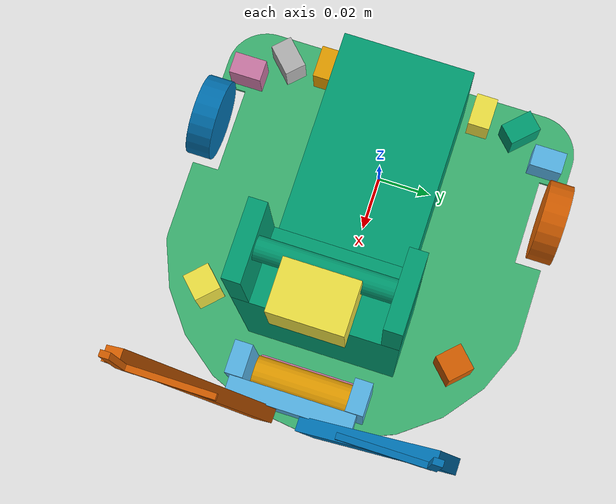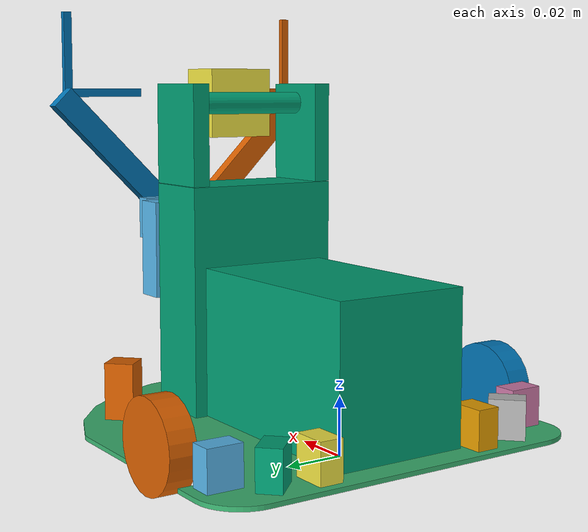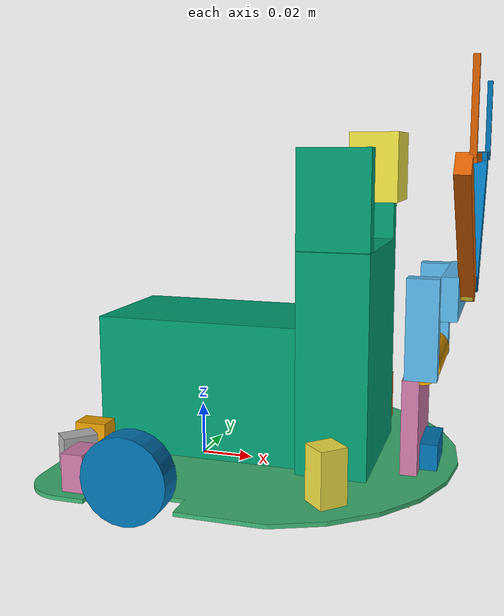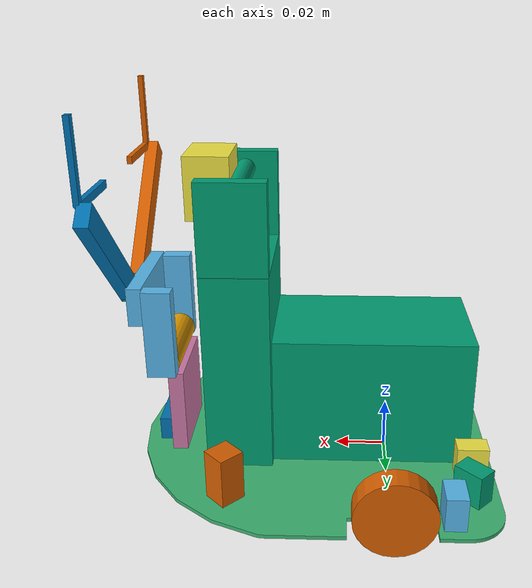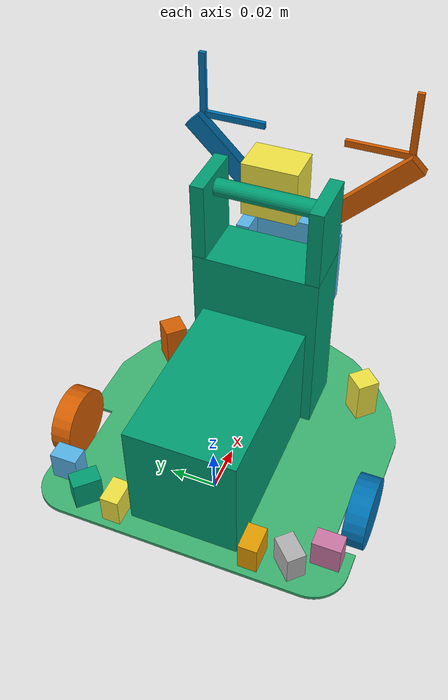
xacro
<?xml version="1.0"?>
<robot xmlns:xacro="http://www.ros.org/wiki/xacro" name="pibot">
  <xacro:include filename="$(find pibot_description)/models/iti0201_robot_static/urdf/pibot_description.urdf.xacro" />

  <xacro:base_with_casters/>
  <xacro:brainbox_with_battery/>
  <xacro:front_ir_sensors/>
  <xacro:rear_ir_sensors/>
  <xacro:first_two_line_sensors/>
  <xacro:second_two_line_sensors/>
  <xacro:third_two_line_sensors/>
  <xacro:raspberry_camera/>
  <xacro:wheels/>
  <xacro:grabber_arm/>
</robot>

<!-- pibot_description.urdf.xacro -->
<robot xmlns:xacro="http://www.ros.org/wiki/xacro" name="pibot">

  <xacro:macro name="base_with_casters">
    <xacro:property name="base_radius" value="0.07" />
    <xacro:property name="base_height" value="0.0015" />
    <xacro:property name="base_mass" value="5" /> <!--real: 0.48kg-->
    <xacro:property name="caster_wheel_radius" value="0.005" />

    <link name="base_with_casters">

      <inertial>
        <mass value="${base_mass}"/>
        <inertia ixx="${1/12 * base_mass * ((3 * base_radius * base_radius) + (base_height * base_height))}" ixy="0.0" ixz="0.0"
          iyy="${1/12 * base_mass * ((3 * base_radius * base_radius) + (base_height * base_height))}" iyz="0.0"
          izz="${1/2 * base_mass * (base_radius * base_radius)}"/>
      </inertial>

      <visual name="base_visual">
        <origin xyz="-0.0615 0.098 0.005" rpy="0 0 -1.57"/>
        <geometry>
          <mesh filename="model://iti0201_robot/meshes/pibot2_base.dae"/>
          <!--cylinder length="0.0015" radius="0.07"/-->
        </geometry>
      </visual>

      <collision name="base_collision">
        <origin xyz="-0.0615 0.098 0.005" rpy="0 0 -1.57"/>
        <geometry>
          <mesh filename="model://iti0201_robot/meshes/pibot2_base.dae"/>
          <!--cylinder length="0.0015" radius="0.07"/-->
        </geometry>
      </collision>

      <visual name='front_caster_visual'>
        <origin xyz="0.04 0 0.005" rpy="0 0 0"/>
        <geometry>
          <sphere radius="${caster_wheel_radius}"/>
        </geometry>
      </visual>

      <collision name='front_caster_collision'>
        <origin xyz="0.04 0 0.005" rpy="0 0 0"/>
        <geometry>
          <sphere radius="${caster_wheel_radius}"/>
        </geometry>
      </collision>

    </link>

    <gazebo reference="base_with_casters">
      <surface>
        <friction>
          <ode>
            <mu>0</mu>
            <mu2>0</mu2>
            <slip1>1.0</slip1>
            <slip2>1.0</slip2>
          </ode>
        </friction>
      </surface>
    </gazebo>

    <link name="wheel_joint">
      <inertial>
        <mass value="0.001"/>
        <inertia ixx="${1/12 * 0.001 * ((0.001 * 0.001) + (0.001 * 0.001))}" ixy="0.0" ixz="0.0"
          iyy="${1/12 * 0.001 * ((0.001 * 0.001) + (0.001 * 0.001))}" iyz="0.0"
          izz="${1/12 * 0.001 * ((0.001 * 0.001) + (0.001 * 0.001))}"/>
      </inertial>
      <visual name='joint_visual'>
        <geometry>
          <box size="0.001 0.001 0.001"/>
        </geometry>
      </visual>
    </link>

    <joint type="fixed" name="Wheel_joint_to_base">
      <origin xyz="0 0 0.015" rpy="0 0 0" />
      <child link="wheel_joint"/>
      <parent link="base_with_casters" />
    </joint>
  </xacro:macro>

<!-- ONLY VISUAL -->
  <xacro:macro name="brainbox_with_battery">
    <link name="brainbox_with_battery">

      <inertial>
        <mass value="0.001"/>
        <inertia ixx="${1/12 * 0.001 * ((0.05 * 0.05) + (0.09 * 0.09))}" ixy="0.0" ixz="0.0"
          iyy="${1/12 * 0.001 * ((0.047 * 0.047) + (0.09 * 0.09))}" iyz="0.0"
          izz="${1/12 * 0.001 * ((0.047 * 0.047) + (0.05 * 0.05))}"/>
      </inertial>

      <visual name="brainbox_visual">
        <origin xyz="-0.022 0 0.0294" rpy="0 0 0" />
        <geometry>
          <box size="0.077 0.0468 0.0512"/>
        </geometry>
      </visual>

      <visual name="camera_stand_visual">
        <origin xyz="0.0294 0 0.043" rpy="0 0 0" />
        <geometry>
          <box size="0.0255 0.0553 0.07896"/>
        </geometry>
      </visual>

      <visual name="camera_stand_right_wall_visual">
        <origin xyz="0.0294 -0.02467 0.1" rpy="0 0 0" />
        <geometry>
          <box size="0.0255 0.006 0.0346"/>
        </geometry>
      </visual>

      <visual name="camera_stand_left_wall_visual">
        <origin xyz="0.0294 0.02467 0.1" rpy="0 0 0" />
        <geometry>
          <box size="0.0255 0.006 0.0346"/>
        </geometry>
      </visual>
    </link>

    <joint type="fixed" name="brainbox_to_base">
      <origin xyz="0.0285 0 0.003" rpy="0 0 0"/>
      <child link="brainbox_with_battery"/>
      <parent link="base_with_casters"/>
    </joint>
  </xacro:macro>

<!-- SHARP SENSORS -->
  <xacro:macro name="front_ir_sensors">
    <link name="front_right_45deg_ir">
      <inertial>
        <mass value="0.001"/>
        <inertia ixx="${1/12 * 0.001 * ((0.02 * 0.02) + (0.01 * 0.01))}" ixy="0.0" ixz="0.0"
          iyy="${1/12 * 0.001 * ((0.01 * 0.01) + (0.01 * 0.01))}" iyz="0.0"
          izz="${1/12 * 0.001 * ((0.01 * 0.01) + (0.02 * 0.02))}"/>
      </inertial>
      <collision name="front_right_45deg_ir_collision">
        <geometry>
          <box size="0.01 0.01 0.02"/>
        </geometry>
      </collision>
      <visual name="front_right_45deg_ir_visual">
        <geometry>
          <box size="0.01 0.01 0.02"/>
        </geometry>
      </visual>
    </link>

    <joint type="fixed" name="front_right_45deg_ir_to_base">
      <origin xyz="0.0611 -0.0471 0.016" rpy="0 0 -0.78535"/>
      <child link="front_right_45deg_ir"/>
      <parent link="base_with_casters"/>
    </joint>

    <gazebo reference="front_right_45deg_ir">
      <sensor name="ir" type="ray">
        <ray>
          <scan>
            <horizontal>
              <samples>100</samples>
              <resolution>1</resolution>
            </horizontal>
          </scan>
          <range>
            <min>0.05</min>
            <max>2.00</max>
            <resolution>0.01</resolution>
          </range>
        </ray>
        <always_on>1</always_on>
        <update_rate>10</update_rate>
        <visualize>false</visualize>
        <plugin name="ir_plugin" filename="libir_plugin.so">
          <topic>ir/front_right</topic>
        </plugin>
      </sensor>
    </gazebo>

    <link name="front_middle_ir">
      <inertial>
        <mass value="0.001"/>
        <inertia ixx="${1/12 * 0.001 * ((0.01 * 0.01) + (0.01 * 0.01))}" ixy="0.0" ixz="0.0"
          iyy="${1/12 * 0.001 * ((0.02 * 0.02) + (0.01 * 0.01))}" iyz="0.0"
          izz="${1/12 * 0.001 * ((0.02 * 0.02) + (0.01 * 0.01))}"/>
      </inertial>
      <collision name="front_middle_ir_collision">
        <geometry>
          <box size="0.01 0.02 0.01"/>
        </geometry>
      </collision>
      <visual name="front_middle_ir_visual">
        <geometry>
          <box size="0.01 0.02 0.01"/>
        </geometry>
      </visual>
    </link>

    <joint type="fixed" name="front_middle_ir_to_base">
      <origin xyz="0.087812 0 0.011" rpy="0 0 0"/>
      <child link="front_middle_ir"/>
      <parent link="base_with_casters"/>
    </joint>

    <gazebo reference="front_middle_ir">
      <sensor name="ir" type="ray">
          <ray>
            <scan>
              <horizontal>
                <samples>100</samples>
                <resolution>1</resolution>
              </horizontal>
            </scan>
            <range>
              <min>0.05</min>
              <max>2.00</max>
              <resolution>0.01</resolution>
            </range>
          </ray>
          <always_on>1</always_on>
          <update_rate>10</update_rate>
          <visualize>false</visualize>
          <plugin name="ir_plugin" filename="libir_plugin.so">
            <topic>ir/front_middle</topic>
          </plugin>
        </sensor>
    </gazebo>

    <link name="front_left_45deg_ir">
      <inertial>
        <mass value="0.001"/>
        <inertia ixx="${1/12 * 0.001 * ((0.02 * 0.02) + (0.01 * 0.01))}" ixy="0.0" ixz="0.0"
          iyy="${1/12 * 0.001 * ((0.01 * 0.01) + (0.01 * 0.01))}" iyz="0.0"
          izz="${1/12 * 0.001 * ((0.01 * 0.01) + (0.02 * 0.02))}"/>
      </inertial>
      <collision name="front_left_45deg_ir_collisionl">
        <geometry>
          <box size="0.01 0.01 0.02"/>
        </geometry>
      </collision>
      <visual name="front_left_45deg_ir_visual">
        <geometry>
          <box size="0.01 0.01 0.02"/>
        </geometry>
      </visual>
    </link>

    <joint type="fixed" name="front_left_45deg_ir_to_base">
      <origin xyz="0.0611151 0.0470558 0.016" rpy="0 0 0.78535"/>
      <child link="front_left_45deg_ir"/>
      <parent link="base_with_casters"/>
    </joint>

    <gazebo reference="front_left_45deg_ir">
      <sensor name="ir" type="ray">
          <ray>
            <scan>
              <horizontal>
                <samples>100</samples>
                <resolution>1</resolution>
              </horizontal>
            </scan>
            <range>
              <min>0.05</min>
              <max>2.00</max>
              <resolution>0.01</resolution>
            </range>
          </ray>
          <always_on>1</always_on>
          <update_rate>10</update_rate>
          <visualize>false</visualize>
          <plugin name="ir_plugin" filename="libir_plugin.so">
            <topic>ir/front_left</topic>
          </plugin>
        </sensor>
    </gazebo>
  </xacro:macro>

<!-- REAR IR SENSORS -->
  <xacro:macro name="rear_ir_sensors">
    <link name="rear_right_90deg_ir">
      <inertial>
        <mass value="0.001"/>
        <inertia ixx="${1/12 * 0.001 * ((0.0135 * 0.0135) + (0.012 * 0.012))}" ixy="0.0" ixz="0.0"
          iyy="${1/12 * 0.001 * ((0.008 * 0.008) + (0.012 * 0.012))}" iyz="0.0"
          izz="${1/12 * 0.001 * ((0.008 * 0.008) + (0.0135 * 0.0135))}"/>
      </inertial>
      <collision name="collision">
        <geometry>
          <box size="0.012 0.008 0.0135"/>
        </geometry>
      </collision>
      <visual name="visual">
        <geometry>
          <box size="0.012 0.008 0.0135"/>
        </geometry>
      </visual>
    </link>

    <joint type="fixed" name="rear_right_90deg_ir_to_base">
      <origin xyz="-0.0215 -0.058 0.013" rpy="0 0 -1.5707" />
      <child link="rear_right_90deg_ir"/>
      <parent link="base_with_casters"/>
    </joint>

    <gazebo reference="rear_right_90deg_ir">
      <sensor name="ir" type="ray">
        <ray>
          <scan>
            <horizontal>
              <samples>100</samples>
              <resolution>1</resolution>
            </horizontal>
          </scan>
          <range>
            <min>0.01</min>
            <max>0.40</max>
            <resolution>0.01</resolution>
          </range>
        </ray>
        <always_on>1</always_on>
        <update_rate>10</update_rate>
        <visualize>false</visualize>
        <plugin name="ir_plugin" filename="libir_plugin.so">
          <topic>ir/rear_right_90</topic>
        </plugin>
      </sensor>
    </gazebo>

    <link name="rear_right_45deg_ir">
      <inertial>
        <mass value="0.001"/>
        <inertia ixx="${1/12 * 0.001 * ((0.0135 * 0.0135) + (0.012 * 0.012))}" ixy="0.0" ixz="0.0"
          iyy="${1/12 * 0.001 * ((0.008 * 0.008) + (0.012 * 0.012))}" iyz="0.0"
          izz="${1/12 * 0.001 * ((0.008 * 0.008) + (0.0135 * 0.0135))}"/>
      </inertial>
      <collision name="collision">
        <geometry>
          <box size="0.012 0.008 0.0135"/>
        </geometry>
      </collision>
      <visual name="visual">
        <geometry>
          <box size="0.012 0.008 0.0135"/>
        </geometry>
      </visual>
    </link>

    <joint type="fixed" name="rear_right_45deg_ir_to_base">
      <origin xyz="-0.03 -0.045 0.013" rpy="0 0 -2.35605" />
      <child link="rear_right_45deg_ir"/>
      <parent link="base_with_casters"/>
    </joint>

    <gazebo reference="rear_right_45deg_ir">
      <sensor name="ir" type="ray">
        <ray>
          <scan>
            <horizontal>
              <samples>100</samples>
              <resolution>1</resolution>
            </horizontal>
          </scan>
          <range>
            <min>0.01</min>
            <max>0.40</max>
            <resolution>0.01</resolution>
          </range>
        </ray>
        <always_on>1</always_on>
        <update_rate>10</update_rate>
        <visualize>false</visualize>
        <plugin name="ir_plugin" filename="libir_plugin.so">
          <topic>ir/rear_right_45</topic>
        </plugin>
      </sensor>
    </gazebo>

    <link name="rear_right_straight_ir">
      <inertial>
        <mass value="0.001"/>
        <inertia ixx="${1/12 * 0.001 * ((0.0135 * 0.0135) + (0.012 * 0.012))}" ixy="0.0" ixz="0.0"
          iyy="${1/12 * 0.001 * ((0.008 * 0.008) + (0.012 * 0.012))}" iyz="0.0"
          izz="${1/12 * 0.001 * ((0.008 * 0.008) + (0.0135 * 0.0135))}"/>
      </inertial>
      <collision name="collision">
        <geometry>
          <box size="0.012 0.008 0.0135"/>
        </geometry>
      </collision>
      <visual name="visual">
        <geometry>
          <box size="0.012 0.008 0.0135"/>
        </geometry>
      </visual>
    </link>

    <joint type="fixed" name="rear_right_straight_ir_to_base">
      <origin xyz="-0.0315 -0.03 0.013" rpy="0 0 -3.14" />
      <child link="rear_right_straight_ir"/>
      <parent link="base_with_casters"/>
    </joint>

    <gazebo reference="rear_right_straight_ir">
      <sensor name="ir" type="ray">
        <ray>
          <scan>
            <horizontal>
              <samples>100</samples>
              <resolution>1</resolution>
            </horizontal>
          </scan>
          <range>
            <min>0.01</min>
            <max>0.40</max>
            <resolution>0.01</resolution>
          </range>
        </ray>
        <always_on>1</always_on>
        <update_rate>10</update_rate>
        <visualize>false</visualize>
        <plugin name="ir_plugin" filename="libir_plugin.so">
          <topic>ir/rear_right_0</topic>
        </plugin>
      </sensor>
    </gazebo>

    <link name="rear_left_90deg_ir">
      <inertial>
        <mass value="0.001"/>
        <inertia ixx="${1/12 * 0.001 * ((0.0135 * 0.0135) + (0.012 * 0.012))}" ixy="0.0" ixz="0.0"
          iyy="${1/12 * 0.001 * ((0.008 * 0.008) + (0.012 * 0.012))}" iyz="0.0"
          izz="${1/12 * 0.001 * ((0.008 * 0.008) + (0.0135 * 0.0135))}"/>
      </inertial>
      <collision name="collision">
        <geometry>
          <box size="0.012 0.008 0.0135"/>
        </geometry>
      </collision>
      <visual name="visual">
        <geometry>
          <box size="0.012 0.008 0.0135"/>
        </geometry>
      </visual>
    </link>

    <joint type="fixed" name="rear_left_90deg_ir_to_base">
      <origin xyz="-0.0215 0.058 0.013" rpy="0 0 1.5707" />
      <child link="rear_left_90deg_ir"/>
      <parent link="base_with_casters"/>
    </joint>

    <gazebo reference="rear_left_90deg_ir">
      <sensor name="ir" type="ray">
        <ray>
          <scan>
            <horizontal>
              <samples>100</samples>
              <resolution>1</resolution>
            </horizontal>
          </scan>
          <range>
            <min>0.01</min>
            <max>0.40</max>
            <resolution>0.01</resolution>
          </range>
        </ray>
        <always_on>1</always_on>
        <update_rate>10</update_rate>
        <visualize>false</visualize>
        <plugin name="ir_plugin" filename="libir_plugin.so">
          <topic>ir/rear_left_90</topic>
        </plugin>
      </sensor>
    </gazebo>

    <link name="rear_left_45deg_ir">
      <inertial>
        <mass value="0.001"/>
        <inertia ixx="${1/12 * 0.001 * ((0.0135 * 0.0135) + (0.012 * 0.012))}" ixy="0.0" ixz="0.0"
          iyy="${1/12 * 0.001 * ((0.008 * 0.008) + (0.012 * 0.012))}" iyz="0.0"
          izz="${1/12 * 0.001 * ((0.008 * 0.008) + (0.0135 * 0.0135))}"/>
      </inertial>
      <collision name="collision">
        <geometry>
          <box size="0.012 0.008 0.0135"/>
        </geometry>
      </collision>
      <visual name="visual">
        <geometry>
          <box size="0.012 0.008 0.0135"/>
        </geometry>
      </visual>
    </link>

    <joint type="fixed" name="rear_left_45deg_ir_to_base">
      <origin xyz="-0.03 0.045 0.013" rpy="0 0 2.35605" />
      <child link="rear_left_45deg_ir"/>
      <parent link="base_with_casters"/>
    </joint>

    <gazebo reference="rear_left_45deg_ir">
      <sensor name="ir" type="ray">
        <ray>
          <scan>
            <horizontal>
              <samples>100</samples>
              <resolution>1</resolution>
            </horizontal>
          </scan>
          <range>
            <min>0.01</min>
            <max>0.40</max>
            <resolution>0.01</resolution>
          </range>
        </ray>
        <always_on>1</always_on>
        <update_rate>10</update_rate>
        <visualize>false</visualize>
        <plugin name="ir_plugin" filename="libir_plugin.so">
          <topic>ir/rear_left_45</topic>
        </plugin>
      </sensor>
    </gazebo>

    <link name="rear_left_straight_ir">
      <inertial>
        <mass value="0.001"/>
        <inertia ixx="${1/12 * 0.001 * ((0.0135 * 0.0135) + (0.012 * 0.012))}" ixy="0.0" ixz="0.0"
          iyy="${1/12 * 0.001 * ((0.008 * 0.008) + (0.012 * 0.012))}" iyz="0.0"
          izz="${1/12 * 0.001 * ((0.008 * 0.008) + (0.0135 * 0.0135))}"/>
      </inertial>
      <collision name="collision">
        <geometry>
          <box size="0.012 0.008 0.0135"/>
        </geometry>
      </collision>
      <visual name="visual">
        <geometry>
          <box size="0.012 0.008 0.0135"/>
        </geometry>
      </visual>
    </link>

    <joint type="fixed" name="rear_left_straight_ir_to_base">
      <origin xyz="-0.0315 0.03 0.013" rpy="0 0 3.14" />
      <child link="rear_left_straight_ir"/>
      <parent link="base_with_casters"/>
    </joint>

    <gazebo reference="rear_left_straight_ir">
      <sensor name="ir" type="ray">
        <pose>0 0 0 0 -0 1.571</pose>
        <ray>
          <scan>
            <horizontal>
              <samples>100</samples>
              <resolution>1</resolution>
            </horizontal>
          </scan>
          <range>
            <min>0.01</min>
            <max>0.40</max>
            <resolution>0.01</resolution>
          </range>
        </ray>
        <always_on>1</always_on>
        <update_rate>10</update_rate>
        <visualize>false</visualize>
        <plugin name="ir_plugin" filename="libir_plugin.so">
          <topic>ir/rear_left_0</topic>
        </plugin>
      </sensor>
    </gazebo>
  </xacro:macro>

<!-- LINE SENSORS -->
  <xacro:macro name="first_two_line_sensors">
    <link name="right_side_first_line_sensor_from_middle">
      <inertial>
        <mass value="0.001"/>
        <inertia ixx="${1/12 * 0.001 * ((0.0025 * 0.0025) + (0.0035 * 0.0035))}" ixy="0.0" ixz="0.0"
          iyy="${1/12 * 0.001 * ((0.0015 * 0.0015) + (0.0035 * 0.0035))}" iyz="0.0"
          izz="${1/12 * 0.001 * ((0.0015 * 0.0015) + (0.0025 * 0.0025))}"/>
      </inertial>
      <collision name="collision">
        <geometry>
          <box size="0.0015 0.0035 0.0025"/>
        </geometry>
      </collision>
      <visual name="visual">
        <geometry>
          <box size="0.0015 0.0035 0.0025"/>
        </geometry>
      </visual>
    </link>

    <joint type="fixed" name="right_side_first_line_sensor_from_middle_to_base">
      <origin xyz="0.0935 -0.005 0.0044" rpy="0 1.5707 0" />
      <child link="right_side_first_line_sensor_from_middle"/>
      <parent link="base_with_casters"/>
    </joint>

    <gazebo reference="right_side_first_line_sensor_from_middle">
      <sensor type="camera" name="line_sensor_camera1">
        <update_rate>10</update_rate>
        <camera name="head">
          <horizontal_fov>0.4</horizontal_fov>
          <image>
            <width>48</width>
            <height>48</height>
            <format>L8</format>
          </image>
          <clip>
              <near>0.001</near>
              <far>0.031</far>
          </clip>
        </camera>
        <always_on>1</always_on>
        <update_rate>10</update_rate>
        <visualize>false</visualize>
        <plugin name="camera_controller" filename="libgazebo_ros_camera.so">
          <alwaysOn>true</alwaysOn>
          <updateRate>10</updateRate>
          <cameraName>/robot/line_sensor/right_first</cameraName>
          <imageTopicName>image_raw</imageTopicName>
          <cameraInfoTopicName>camera_info</cameraInfoTopicName>
          <frameName>camera_link</frameName>
          <hackBaseline>0.07</hackBaseline>
          <distortionK1>0.0</distortionK1>
          <distortionK2>0.0</distortionK2>
          <distortionK3>0.0</distortionK3>
          <distortionT1>0.0</distortionT1>
          <distortionT2>0.0</distortionT2>
        </plugin>
      </sensor>
    </gazebo>

    <link name="left_side_first_line_sensor_from_middle">
      <inertial>
        <mass value="0.001"/>
        <inertia ixx="${1/12 * 0.001 * ((0.0025 * 0.0025) + (0.0035 * 0.0035))}" ixy="0.0" ixz="0.0"
          iyy="${1/12 * 0.001 * ((0.0015 * 0.0015) + (0.0035 * 0.0035))}" iyz="0.0"
          izz="${1/12 * 0.001 * ((0.0015 * 0.0015) + (0.0025 * 0.0025))}"/>
      </inertial>
      <collision name="collision">
        <geometry>
          <box size="0.0015 0.0035 0.0025"/>
        </geometry>
      </collision>
      <visual name="visual">
        <geometry>
          <box size="0.0015 0.0035 0.0025"/>
        </geometry>
      </visual>
    </link>

    <joint type="fixed" name="left_side_first_line_sensor_from_middle_to_base">
      <origin xyz="0.0935 0.005 0.0044" rpy="0 1.5707 0" />
      <child link="left_side_first_line_sensor_from_middle"/>
      <parent link="base_with_casters"/>
    </joint>

    <gazebo reference="left_side_first_line_sensor_from_middle">
      <sensor type="camera" name="line_sensor_camera2">
        <update_rate>10</update_rate>
        <pose>0 0 0 0 1.571 0</pose>
        <camera name="head">
          <horizontal_fov>0.4</horizontal_fov>
          <image>
            <width>48</width>
            <height>48</height>
            <format>L8</format>
          </image>
          <clip>
              <near>0.001</near>
              <far>0.031</far>
          </clip>
        </camera>
        <always_on>1</always_on>
        <update_rate>10</update_rate>
        <visualize>false</visualize>
        <plugin name="camera_controller" filename="libgazebo_ros_camera.so">
          <alwaysOn>true</alwaysOn>
          <updateRate>10</updateRate>
          <cameraName>/robot/line_sensor/left_first</cameraName>
          <imageTopicName>image_raw</imageTopicName>
          <cameraInfoTopicName>camera_info</cameraInfoTopicName>
          <frameName>camera_link</frameName>
          <hackBaseline>0.07</hackBaseline>
          <distortionK1>0.0</distortionK1>
          <distortionK2>0.0</distortionK2>
          <distortionK3>0.0</distortionK3>
          <distortionT1>0.0</distortionT1>
          <distortionT2>0.0</distortionT2>
        </plugin>
      </sensor>
    </gazebo>
  </xacro:macro>

  <xacro:macro name="second_two_line_sensors">
    <link name="right_side_second_line_sensor_from_middle">
      <inertial>
        <mass value="0.001"/>
        <inertia ixx="${1/12 * 0.001 * ((0.0025 * 0.0025) + (0.0035 * 0.0035))}" ixy="0.0" ixz="0.0"
          iyy="${1/12 * 0.001 * ((0.0015 * 0.0015) + (0.0035 * 0.0035))}" iyz="0.0"
          izz="${1/12 * 0.001 * ((0.0015 * 0.0015) + (0.0025 * 0.0025))}"/>
      </inertial>
      <collision name="collision">
        <geometry>
          <box size="0.0015 0.0035 0.0025"/>
        </geometry>
      </collision>
      <visual name="visual">
        <geometry>
          <box size="0.0015 0.0035 0.0025"/>
        </geometry>
      </visual>
    </link>

    <joint type="fixed" name="right_side_second_line_sensor_from_middle_to_base">
      <origin xyz="0.0935 -0.015 0.0044" rpy="0 1.5707 0" />
      <child link="right_side_second_line_sensor_from_middle"/>
      <parent link="base_with_casters"/>
    </joint>

    <gazebo reference="right_side_second_line_sensor_from_middle">
      <sensor type="camera" name="line_sensor_camera3">
        <update_rate>10</update_rate>
        <pose>0 0 0 0 1.571 0</pose>
        <camera name="head">
          <horizontal_fov>0.4</horizontal_fov>
          <image>
            <width>48</width>
            <height>48</height>
            <format>L8</format>
          </image>
          <clip>
              <near>0.001</near>
              <far>0.031</far>
          </clip>
        </camera>
        <always_on>1</always_on>
        <update_rate>10</update_rate>
        <visualize>false</visualize>
        <plugin name="camera_controller" filename="libgazebo_ros_camera.so">
          <alwaysOn>true</alwaysOn>
          <updateRate>10</updateRate>
          <cameraName>/robot/line_sensor/right_second</cameraName>
          <imageTopicName>image_raw</imageTopicName>
          <cameraInfoTopicName>camera_info</cameraInfoTopicName>
          <frameName>camera_link</frameName>
          <hackBaseline>0.07</hackBaseline>
          <distortionK1>0.0</distortionK1>
          <distortionK2>0.0</distortionK2>
          <distortionK3>0.0</distortionK3>
          <distortionT1>0.0</distortionT1>
          <distortionT2>0.0</distortionT2>
        </plugin>
      </sensor>
    </gazebo>

    <link name="left_side_second_line_sensor_from_middle">
      <inertial>
        <mass value="0.001"/>
        <inertia ixx="${1/12 * 0.001 * ((0.0025 * 0.0025) + (0.0035 * 0.0035))}" ixy="0.0" ixz="0.0"
          iyy="${1/12 * 0.001 * ((0.0015 * 0.0015) + (0.0035 * 0.0035))}" iyz="0.0"
          izz="${1/12 * 0.001 * ((0.0015 * 0.0015) + (0.0025 * 0.0025))}"/>
      </inertial>
      <collision name="collision">
        <geometry>
          <box size="0.0015 0.0035 0.0025"/>
        </geometry>
      </collision>
      <visual name="visual">
        <geometry>
          <box size="0.0015 0.0035 0.0025"/>
        </geometry>
      </visual>
    </link>

    <joint type="fixed" name="left_side_second_line_sensor_from_middle_to_base">
      <origin xyz="0.0935 0.015 0.0044" rpy="0 1.5707 0" />
      <child link="left_side_second_line_sensor_from_middle"/>
      <parent link="base_with_casters"/>
    </joint>

    <gazebo reference="left_side_second_line_sensor_from_middle">
      <sensor type="camera" name="line_sensor_camera4">
        <update_rate>10</update_rate>
        <pose>0 0 0 0 1.571 0</pose>
        <camera name="head">
          <horizontal_fov>0.4</horizontal_fov>
          <image>
            <width>48</width>
            <height>48</height>
            <format>L8</format>
          </image>
          <clip>
              <near>0.001</near>
              <far>0.031</far>
          </clip>
        </camera>
        <always_on>1</always_on>
        <update_rate>10</update_rate>
        <visualize>false</visualize>
        <plugin name="camera_controller" filename="libgazebo_ros_camera.so">
          <alwaysOn>true</alwaysOn>
          <updateRate>10</updateRate>
          <cameraName>/robot/line_sensor/left_second</cameraName>
          <imageTopicName>image_raw</imageTopicName>
          <cameraInfoTopicName>camera_info</cameraInfoTopicName>
          <frameName>camera_link</frameName>
          <hackBaseline>0.07</hackBaseline>
          <distortionK1>0.0</distortionK1>
          <distortionK2>0.0</distortionK2>
          <distortionK3>0.0</distortionK3>
          <distortionT1>0.0</distortionT1>
          <distortionT2>0.0</distortionT2>
        </plugin>
      </sensor>
    </gazebo>
  </xacro:macro>

  <xacro:macro name="third_two_line_sensors">
    <link name="right_side_third_line_sensor_from_middle">
      <inertial>
        <mass value="0.001"/>
        <inertia ixx="${1/12 * 0.001 * ((0.0025 * 0.0025) + (0.0035 * 0.0035))}" ixy="0.0" ixz="0.0"
          iyy="${1/12 * 0.001 * ((0.0015 * 0.0015) + (0.0035 * 0.0035))}" iyz="0.0"
          izz="${1/12 * 0.001 * ((0.0015 * 0.0015) + (0.0025 * 0.0025))}"/>
      </inertial>
      <collision name="collision">
        <geometry>
          <box size="0.0015 0.0035 0.0025"/>
        </geometry>
      </collision>
      <visual name="visual">
        <geometry>
          <box size="0.0015 0.0035 0.0025"/>
        </geometry>
      </visual>
    </link>

    <joint type="fixed" name="right_side_third_line_sensor_from_middle_to_base">
      <origin xyz="0.0855 -0.035 0.0044" rpy="0 1.5707 0" />
      <child link="right_side_third_line_sensor_from_middle"/>
      <parent link="base_with_casters"/>
    </joint>

    <gazebo reference="right_side_third_line_sensor_from_middle">
      <sensor type="camera" name="line_sensor_camera5">
        <update_rate>10</update_rate>
        <pose>0 0 0 0 1.571 0</pose>
        <camera name="head">
          <horizontal_fov>0.4</horizontal_fov>
          <image>
            <width>48</width>
            <height>48</height>
            <format>L8</format>
          </image>
          <clip>
              <near>0.001</near>
              <far>0.031</far>
          </clip>
        </camera>
        <always_on>1</always_on>
        <update_rate>10</update_rate>
        <visualize>false</visualize>
        <plugin name="camera_controller" filename="libgazebo_ros_camera.so">
          <alwaysOn>true</alwaysOn>
          <updateRate>10</updateRate>
          <cameraName>/robot/line_sensor/right_third</cameraName>
          <imageTopicName>image_raw</imageTopicName>
          <cameraInfoTopicName>camera_info</cameraInfoTopicName>
          <frameName>camera_link</frameName>
          <hackBaseline>0.07</hackBaseline>
          <distortionK1>0.0</distortionK1>
          <distortionK2>0.0</distortionK2>
          <distortionK3>0.0</distortionK3>
          <distortionT1>0.0</distortionT1>
          <distortionT2>0.0</distortionT2>
        </plugin>
      </sensor>
    </gazebo>

    <link name="left_side_third_line_sensor_from_middle">
      <inertial>
        <mass value="0.001"/>
        <inertia ixx="${1/12 * 0.001 * ((0.0025 * 0.0025) + (0.0035 * 0.0035))}" ixy="0.0" ixz="0.0"
          iyy="${1/12 * 0.001 * ((0.0015 * 0.0015) + (0.0035 * 0.0035))}" iyz="0.0"
          izz="${1/12 * 0.001 * ((0.0015 * 0.0015) + (0.0025 * 0.0025))}"/>
      </inertial>
      <collision name="collision">
        <geometry>
          <box size="0.0015 0.0035 0.0025"/>
        </geometry>
      </collision>
      <visual name="visual">
        <geometry>
          <box size="0.0015 0.0035 0.0025"/>
        </geometry>
      </visual>
    </link>

    <joint type="fixed" name="left_side_third_line_sensor_from_middle_to_base">
      <origin xyz="0.0855 0.035 0.0044" rpy="0 1.5707 0" />
      <child link="left_side_third_line_sensor_from_middle"/>
      <parent link="base_with_casters"/>
    </joint>

    <gazebo reference="left_side_third_line_sensor_from_middle">
      <sensor type="camera" name="line_sensor_camera6">
        <update_rate>10</update_rate>
        <pose>0 0 0 0 1.571 0</pose>
        <camera name="head">
          <horizontal_fov>0.4</horizontal_fov>
          <image>
            <width>48</width>
            <height>48</height>
            <format>L8</format>
          </image>
          <clip>
              <near>0.001</near>
              <far>0.031</far>
          </clip>
        </camera>
        <always_on>1</always_on>
        <update_rate>10</update_rate>
        <visualize>false</visualize>
        <plugin name="camera_controller" filename="libgazebo_ros_camera.so">
          <alwaysOn>true</alwaysOn>
          <updateRate>10</updateRate>
          <cameraName>/robot/line_sensor/left_third</cameraName>
          <imageTopicName>image_raw</imageTopicName>
          <cameraInfoTopicName>camera_info</cameraInfoTopicName>
          <frameName>camera_link</frameName>
          <hackBaseline>0.07</hackBaseline>
          <distortionK1>0.0</distortionK1>
          <distortionK2>0.0</distortionK2>
          <distortionK3>0.0</distortionK3>
          <distortionT1>0.0</distortionT1>
          <distortionT2>0.0</distortionT2>
        </plugin>
      </sensor>
    </gazebo>
  </xacro:macro>

<!-- CAMERA -->
  <xacro:macro name="raspberry_camera">
    <link name="camera_stand_pole">
      <inertial>
        <mass value="0.001"/>
        <inertia ixx="${1/12 * 0.001 * ((3 * 0.003822 * 0.003822) + (0.0433499 * 0.0433499))}" ixy="0.0" ixz="0.0"
          iyy="${1/12 * 0.001 * ((3 * 0.003822 * 0.003822) + (0.0433499 * 0.0433499))}" iyz="0.0"
          izz="${1/2 * 0.001 * (0.003822 * 0.003822)}"/>
      </inertial>
      <collision name="collision">
        <geometry>
          <cylinder radius="0.003822" length="0.0433499"/>
        </geometry>
      </collision>
      <visual name="visual">
        <geometry>
          <cylinder radius="0.003822" length="0.0433499"/>
        </geometry>
      </visual>
    </link>

    <joint type="fixed" name="camera_stand_pole_to_base">
      <origin xyz="0.05790475 0 0.1135341" rpy="0 1.5707 1.5707" />
      <child link="camera_stand_pole"/>
      <parent link="base_with_casters"/>
    </joint>

    <link name="pi_camera">
      <inertial>
        <mass value="0.001"/>
        <inertia ixx="${1/12 * 0.001 * ((0.024 * 0.024) + (0.017 * 0.017))}" ixy="0.0" ixz="0.0"
          iyy="${1/12 * 0.001 * ((0.024 * 0.024) + (0.017 * 0.017))}" iyz="0.0"
          izz="${1/12 * 0.001 * ((0.024 * 0.024) + (0.024 * 0.024))}"/>
      </inertial>
      <collision name="collision">
        <geometry>
          <box size="0.017 0.024 0.024"/>
        </geometry>
      </collision>
      <visual name="visual">
        <geometry>
          <box size="0.017 0.024 0.024"/>
        </geometry>
      </visual>
    </link>

    <joint type="fixed" name="pi_camera_to_pole">
      <origin xyz="0 -0.0104 0" rpy="0 0 -1.5707"/>
      <child link="pi_camera"/>
      <parent link="camera_stand_pole"/>
    </joint>

    <gazebo reference="pi_camera">
      <sensor type="camera" name="camera">
        <update_rate>10</update_rate>
        <always_on>1</always_on>
        <visualize>false</visualize>
        <camera name="head">
          <horizontal_fov>1.3962634</horizontal_fov>
          <image>
            <width>800</width>
            <height>800</height>
            <format>R8G8B8</format>
          </image>
          <clip>
            <near>0.02</near>
            <far>300</far>
          </clip>
        </camera>

        <plugin name="camera_controller" filename="libgazebo_ros_camera.so">
          <alwaysOn>true</alwaysOn>
          <updateRate>10</updateRate>
          <cameraName>robot/camera</cameraName>
          <imageTopicName>image_raw</imageTopicName>
          <cameraInfoTopicName>camera_info</cameraInfoTopicName>
          <frameName>camera_link</frameName>
          <hackBaseline>0.07</hackBaseline>
          <distortionK1>0.0</distortionK1>
          <distortionK2>0.0</distortionK2>
          <distortionK3>0.0</distortionK3>
          <distortionT1>0.0</distortionT1>
          <distortionT2>0.0</distortionT2>
        </plugin>
      </sensor>
    </gazebo>
  </xacro:macro>

<!-- WHEELS -->
  <xacro:macro name="wheels">
    <xacro:property name="wheel_mass" value="1" /> <!-- real: 0.005-->
    <xacro:property name="wheel_radius" value="0.015"/>
    <xacro:property name="wheel_length" value="0.009"/>

    <link name="right_wheel">
      <inertial>
        <mass value="${wheel_mass}"/>
        <inertia ixx="${1/12 * wheel_mass * ((3 * wheel_radius * wheel_radius) + (wheel_length * wheel_length))}" ixy="0.0" ixz="0.0"
          iyy="${1/12 * wheel_mass * ((3 * wheel_radius * wheel_radius) + (wheel_length * wheel_length))}" iyz="0.0"
          izz="${1/2 * wheel_mass * (wheel_radius * wheel_radius)}"/>
      </inertial>

      <visual name="right_wheel_visual">
      <origin xyz="0 0 0" rpy="0 0 0" />
        <geometry>
          <cylinder radius="${wheel_radius}" length="${wheel_length}"/>
        </geometry>
      </visual>

      <collision name="right_wheel_collision">
      <origin xyz="0 0 0" rpy="0 0 0" />
        <geometry>
          <cylinder radius="${wheel_radius}" length="${wheel_length}"/>
        </geometry>
      </collision>
    </link>

    <gazebo reference="right_wheel">
      <mu1 value="1.0"/>
      <mu2 value="1.0"/>
      <kp value="10000000.0" />
      <kd value="1.0" />
      <fdir1 value="1 0 0"/>
    </gazebo>

    <joint type="fixed" name="right_wheel_hinge">
      <origin xyz="0 -0.0655 0" rpy="0 1.5707 1.5707"/>
      <child link="right_wheel"/>
      <parent link="wheel_joint"/>
      <!--proovisin erinevaid väärtusi siia "limit" alla, midagi ei muutunud -->
      <limit effort="10.0" velocity="1.0" />
      <axis xyz="0 0 1" rpy="0 0 0"/>
    </joint>

    <link name="left_wheel">
      <inertial>
        <mass value="${wheel_mass}"/>
        <inertia ixx="${1/12 * wheel_mass * ((3 * wheel_radius * wheel_radius) + (wheel_length * wheel_length))}" ixy="0.0" ixz="0.0"
          iyy="${1/12 * wheel_mass * ((3 * wheel_radius * wheel_radius) + (wheel_length * wheel_length))}" iyz="0.0"
          izz="${1/2 * wheel_mass * (wheel_radius * wheel_radius)}"/>
      </inertial>

      <visual name="left_wheel_visual">
      <origin xyz="0 0 0" rpy="0 0 0" />
        <geometry>
          <cylinder radius="${wheel_radius}" length="${wheel_length}"/>
        </geometry>
      </visual>

      <collision name="left_wheel_collision">
      <origin xyz="0 0 0" rpy="0 0 0" />
        <geometry>
          <cylinder radius="${wheel_radius}" length="${wheel_length}"/>
        </geometry>
      </collision>
    </link>

    <gazebo reference="left_wheel">
      <mu1 value="1.0"/>
      <mu2 value="1.0"/>
      <kp value="10000000.0" />
      <kd value="1.0" />
      <fdir1 value="1 0 0"/>
    </gazebo>

    <joint type="fixed" name="left_wheel_hinge">
      <origin xyz="0 0.0655 0" rpy="0 1.5707 1.5707"/>
      <child link="left_wheel"/>
      <parent link="wheel_joint"/>
      <limit effort="10.0" velocity="1.0" />
      <axis xyz="0 0 1" rpy="0 0 0"/>
    </joint>

  </xacro:macro>

<!-- ARM -->
  <xacro:macro name="grabber_arm">
    <link name="grabber_to_base_1">
      <inertial>
        <mass value="0.001"/>
        <inertia ixx="0.0000337" ixy="0.0" ixz="0.0"
          iyy="0.0000493" iyz="0.0"
          izz="0.0000248"/>
      </inertial>

      <collision name="arm_to_base_col">
        <geometry>
          <box size=".006 .034 .03455"/>
        </geometry>
      </collision>
      <visual name="arm_to_base_vis">
        <geometry>
          <box size=".006 .034 .03455"/>
        </geometry>
      </visual>
    </link>

    <joint type="fixed" name="grabber_to_base_joint_1">
      <origin xyz="0.0835 0 0.0235" rpy="0 0 0" />
      <dynamics damping="1"/>
      <child link="grabber_to_base_1"/>
      <parent link="base_with_casters"/>
    </joint>

    <link name="pole_rotation_reference">
      <inertial>
        <mass value="0.001"/>
        <inertia ixx="0.0000337" ixy="0.0" ixz="0.0"
          iyy="0.0000493" iyz="0.0"
          izz="0.0000248"/>
      </inertial>

      <collision name="pole_rotation_reference_col">
        <geometry>
          <box size=".001 .001 .001"/>
        </geometry>
      </collision>
      <visual name="pole_rotation_reference_vis">
        <geometry>
          <box size=".001 .001 .001"/>
        </geometry>
      </visual>
    </link>

    <joint type="fixed" name="pole_rotation_reference_to_base">
      <origin xyz="0.0875 0 0.04555" rpy="0 1.5707 1.5707" />
      <dynamics damping="1"/>
      <child link="pole_rotation_reference"/>
      <parent link="base_with_casters"/>
    </joint>

    <link name="grabber_pole">
      <inertial>
        <mass value="0.001"/>
        <inertia ixx="0.0000337" ixy="0.0" ixz="0.0"
          iyy="0.0000493" iyz="0.0"
          izz="0.0000248"/>
      </inertial>

      <collision name="the_pole_col">
        <geometry>
          <cylinder radius=".006" length=".034"/>
        </geometry>
      </collision>
      <visual name="the_pole_vis">
        <geometry>
          <cylinder radius=".006" length=".034"/>
        </geometry>
      </visual>
    </link>

    <!-- TODO -->
    <joint type="fixed" name="grabber_pole">
      <origin xyz="0 0 0" rpy="0 0 0" />
      <child link="grabber_pole"/>
      <dynamics damping="1"/>
      <parent link="pole_rotation_reference"/>
      <limit effort="10.0" velocity="1.0" lower="0.0" upper="1.5"/>
      <axis xyz="0 0 1"/>
    </joint>

    <link name="grabber_mount">
      <collision name="arm_collision_left">
        <origin xyz="0.0144 0.02 0" rpy="0 0 0" />
        <geometry>
          <box size=".035 .006 .011"/>
        </geometry>
      </collision>
      <visual name="arm_visual_left">
        <origin xyz="0.0144 0.02 0" rpy="0 0 0" />
        <geometry>
          <box size=".035 .006 .011"/>
        </geometry>
      </visual>

      <collision name="arm_collision_right">
        <origin xyz="0.0144 -0.02 0" rpy="0 0 0" />
        <geometry>
          <box size=".035 .006 .011"/>
        </geometry>
      </collision>
      <visual name="arm_visual_right">
        <origin xyz="0.0144 -0.02 0" rpy="0 0 0" />
        <geometry>
          <box size=".035 .006 .011"/>
        </geometry>
      </visual>

      <collision name="collision_under">
        <origin xyz="0.025 0 -0.00855" rpy="0 0 0"/>
        <geometry>
          <box size=".015 .042 .0057"/>
        </geometry>
      </collision>
      <visual name="visual_under">
        <origin xyz="0.025 0 -0.00855" rpy="0 0 0"/>
        <geometry>
          <box size=".015 .042 .0057"/>
        </geometry>
      </visual>

      <inertial>
        <mass value="0.001"/>
        <inertia ixx="0.0000337" ixy="0.0" ixz="0.0"
          iyy="0.0000493" iyz="0.0"
          izz="0.0000248"/>
      </inertial>
    </link>

    <joint type="fixed" name="grabber_mount_to_pole">
      <origin xyz="0 0 0" rpy="1.5707 0 3.1414"/>
      <dynamics damping="1"/>
      <child link="grabber_mount"/>
      <parent link="grabber_pole"/>
    </joint>

    <link name="grabber_left_arm_joint">
      <collision name="collision_for_left_arm_joint">
        <geometry>
          <cylinder radius=".002" length=".004"/>
        </geometry>
      </collision>
      <visual name="visual_for_left_arm_joint">
        <geometry>
          <cylinder radius=".002" length=".004"/>
        </geometry>
      </visual>

      <inertial>
        <mass value="0.001"/>
        <inertia ixx="0.0000337" ixy="0.0" ixz="0.0"
          iyy="0.0000493" iyz="0.0"
          izz="0.0000248"/>
      </inertial>
    </link>

    <!-- TODO -->
    <joint type="fixed" name="grabber_left_arm_joint_to_grabber_mount">
      <origin xyz="0.025 0.01 -0.01355" rpy="0 3.1414 0" />
      <child link="grabber_left_arm_joint"/>
      <parent link="grabber_mount"/>
      <dynamics damping="1"/>
      <limit effort="10.0" velocity="1.0" lower="0.0" upper="0.7"/>
      <axis xyz="0 0 1"/>
    </joint>

    <link name="grabber_right_arm_joint">
      <collision name="collision_for_right_arm_joint">
        <geometry>
          <cylinder radius=".002" length=".004"/>
        </geometry>
      </collision>
      <visual name="visual_for_right_arm_joint">
        <geometry>
          <cylinder radius=".002" length=".004"/>
        </geometry>
      </visual>

      <inertial>
        <mass value="0.001"/>
        <inertia ixx="0.0000337" ixy="0.0" ixz="0.0"
          iyy="0.0000493" iyz="0.0"
          izz="0.0000248"/>
      </inertial>
    </link>

    <!-- TODO -->
    <joint type="fixed" name="grabber_right_arm_joint_to_grabber_mount">
      <origin xyz="0.025 -0.01 -0.01355" rpy="0 3.1414 0" />
      <child link="grabber_right_arm_joint"/>
      <parent link="grabber_mount"/>
      <dynamics damping="1"/>
      <limit effort="10.0" velocity="1.0" lower="0.0" upper="-0.7"/>
      <axis xyz="0 0 1"/>
    </joint>

    <link name="grabber_arm_left">
      <collision name="main_arm_collision_l">
        <origin xyz="0.023 0.019 0" rpy="0 0 0.78535"/>
        <geometry>
          <box size=".06213 .009 .005"/>
        </geometry>
      </collision>
      <visual name="main_arm_visual_l">
        <origin xyz="0.023 0.019 0" rpy="0 0 0.78535"/>
        <geometry>
          <box size=".06213 .009 .005"/>
        </geometry>
      </visual>

      <collision name="small_arm_collision_l_f">
        <origin xyz="0.061 0.037 -0.0025" rpy="0 0 0"/>
        <geometry>
          <box size=".029 .003 .002"/>
        </geometry>
      </collision>
      <visual name="small_arm_visual_l_f">
        <origin xyz="0.061 0.037 -0.0025" rpy="0 0 0"/>
        <geometry>
          <box size=".029 .003 .002"/>
        </geometry>
      </visual>

      <collision name="small_arm_collision_l_b">
        <origin xyz="0.0465 0.0225 -0.0025" rpy="0 0 -1.5707"/>
        <geometry>
          <box size=".029 .003 .002"/>
        </geometry>
      </collision>
      <visual name="small_arm_visual_l_b">
        <origin xyz="0.0465 0.0225 -0.0025" rpy="0 0 -1.5707"/>
        <geometry>
          <box size=".029 .003 .002"/>
        </geometry>
      </visual>

      <inertial>
        <mass value="0.001"/>
        <inertia ixx="0.0000337" ixy="0.0" ixz="0.0"
          iyy="0.0000493" iyz="0.0"
          izz="0.0000248"/>
      </inertial>
    </link>

    <joint type="fixed" name="grabber_arm_left_to_grabber_joint">
      <origin xyz="0 0 0" rpy="0 3.1414 0" />
      <child link="grabber_arm_left"/>
      <parent link="grabber_left_arm_joint"/>
      <dynamics damping="1"/>
    </joint>

    <link name="grabber_arm_right">
      <collision name="main_arm_collision_r">
        <origin xyz="0.023 -0.019 0" rpy="0 0 -0.78535"/>
        <geometry>
          <box size=".06213 .009 .005"/>
        </geometry>
      </collision>
      <visual name="main_arm_visual_r">
        <origin xyz="0.023 -0.019 0" rpy="0 0 -0.78535"/>
        <geometry>
          <box size=".06213 .009 .005"/>
        </geometry>
      </visual>

      <collision name="small_arm_collision_r_f">
        <origin xyz="0.061 -0.037 -0.0025" rpy="0 0 0"/>
        <geometry>
          <box size=".029 .003 .002"/>
        </geometry>
      </collision>
      <visual name="small_arm_visual_r_f">
        <origin xyz="0.061 -0.037 -0.0025" rpy="0 0 0"/>
        <geometry>
          <box size=".029 .003 .002"/>
        </geometry>
      </visual>

      <collision name="small_arm_collision_r_b">
        <origin xyz="0.0465 -0.0225 -0.0025" rpy="0 0 -1.5707"/>
        <geometry>
          <box size=".029 .003 .002"/>
        </geometry>
      </collision>
      <visual name="small_arm_visual_r_b">
        <origin xyz="0.0465 -0.0225 -0.0025" rpy="0 0 -1.5707"/>
        <geometry>
          <box size=".029 .003 .002"/>
        </geometry>
      </visual>

      <inertial>
        <mass value="0.001"/>
        <inertia ixx="0.0000337" ixy="0.0" ixz="0.0"
          iyy="0.0000493" iyz="0.0"
          izz="0.0000248"/>
      </inertial>
    </link>

    <joint type="fixed" name="grabber_arm_right_to_grabber_joint">
      <origin xyz="0 0 0" rpy="0 3.1414 0" />
      <child link="grabber_arm_right"/>
      <parent link="grabber_right_arm_joint"/>
      <dynamics damping="1"/>
    </joint>

  </xacro:macro>

  <gazebo>
    <plugin name="imu_plugin" filename="libgazebo_ros_imu.so">
      <alwaysOn>true</alwaysOn>
      <bodyName>base_with_casters</bodyName>
      <topicName>/robot/imu/raw</topicName>
      <gaussianNoise>0.0</gaussianNoise>
      <updateRate>10.0</updateRate>
    </plugin>
  </gazebo>
</robot>
